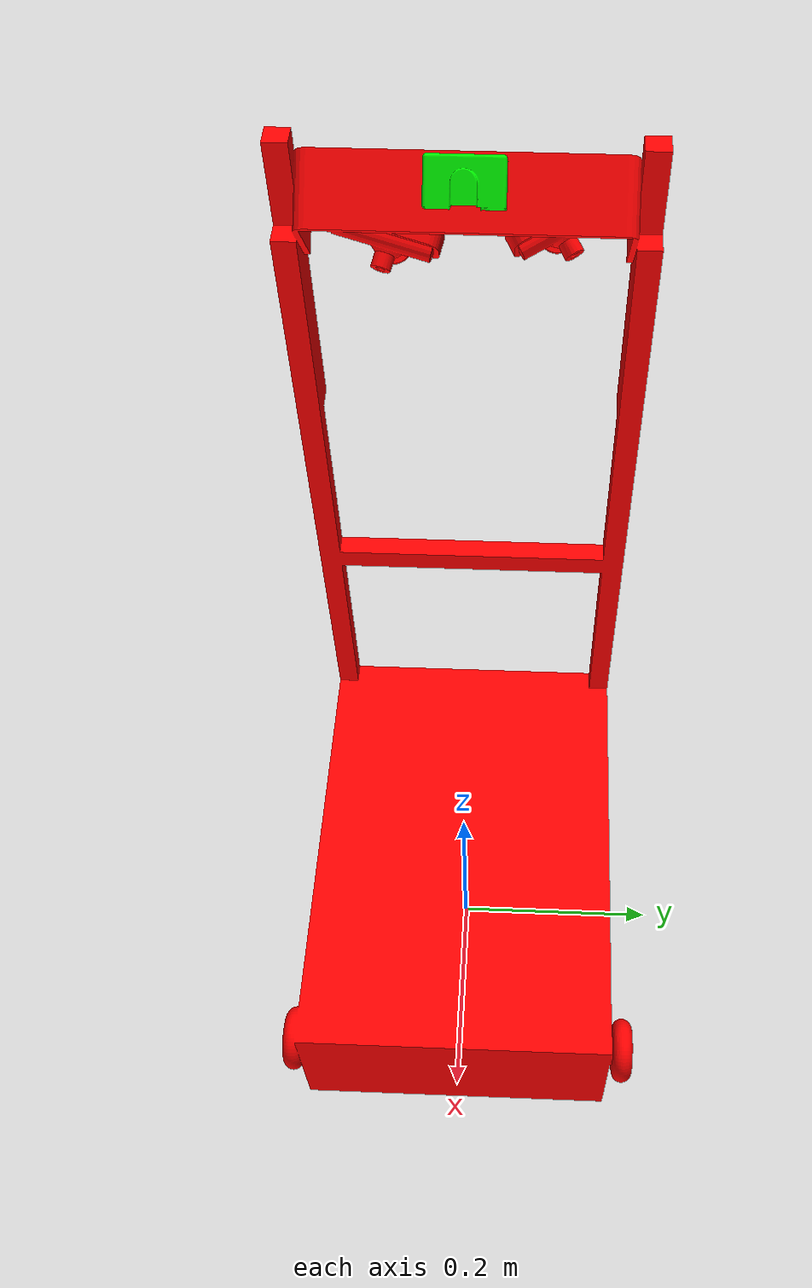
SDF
<?xml version="1.0" encoding="utf-8"?>
<sdf version="1.6">
  <model name="conde">
    <pose>0 0 0.0900000000000005 0 0 0</pose>
    <plugin name="clock" filename="libgz_clock.so">
      <topic>/gazebo/frc/time</topic>
    </plugin>
    <link name="chassis">
      <gravity>1</gravity>
      <self_collide>0</self_collide>
      <pose>-0.0708311922786808 0 0.126939925664659 0 0 0</pose>
      <must_be_base_link>1</must_be_base_link>
      <velocity_decay>
        <linear>0</linear>
        <angular>0</angular>
      </velocity_decay>
      <inertial>
        <mass>10.5639601562742</mass>
        <pose>0.0718791678031616 0 -0.0762798513784499 0 0 0</pose>
        <inertia>
          <ixx>0.07782818</ixx>
          <ixy>0</ixy>
          <ixz>0.02385301</ixz>
          <iyy>0.15005209</iyy>
          <iyz>0</iyz>
          <izz>0.17500393</izz>
        </inertia>
      </inertial>
      <collision name="chassis_collision">
        <pose>0.0708311922786808 -1.42589257214707E-05 -0.126939925664659 0 0 0</pose>
        <geometry>
          <mesh>
            <scale>1 1 1</scale>
            <uri>model://meshes/chassis_col.STL</uri>
          </mesh>
        </geometry>
        <surface>
          <contact>
            <ode>
              <kp>50000</kp>
              <kd>9000</kd>
            </ode>
          </contact>
          <friction>
            <ode>
              <mu>0</mu>
              <mu2>0</mu2>
            </ode>
          </friction>
        </surface>
      </collision>
      <visual name="chassis_visual">
        <pose>0.0708311922786808 0 -0.126939925664659 0 0 0</pose>
        <material>
          <ambient>1 0 0 1</ambient>
          <diffuse>1 0 0 1</diffuse>
        </material>
        <geometry>
          <mesh>
            <scale>1 1 1</scale>
            <uri>model://meshes/chassis.STL</uri>
          </mesh>
        </geometry>
      </visual>

      <visual name="camera_wheel">
        <pose>-0.12 -0.0 0.562431407758936 -0.7 0 1.57</pose>
        <material>
          <ambient>0 1 0 1</ambient>
          <diffuse>0 1 0 1</diffuse>
        </material>
        <geometry>
          <mesh>
            <scale>0.0007 0.0007 0.0007</scale>
            <uri>model://meshes/Playstation_Eye_Cover_1mm.STL</uri>
          </mesh>
        </geometry>
      </visual>

	<sensor name="conde_camera_controller_tracking_left" type="camera">
	  <visualize>0</visualize>
	  <always_on>1</always_on>
	  <pose>-0.1242802892 0.09985 0.48372014861 0.319455 0.531892 0.56147</pose>
	  <camera name="conde_camera_tracking_left">
		<horizontal_fov>1.0865</horizontal_fov>
		<image>
		  <width>160</width>
		  <height>120</height>
		</image>
		<clip>
		  <near>0.001</near>
		  <far>50</far>
		</clip>
	  </camera>
	  <plugin name="conde_camera_controller_tracking_left" filename="libgazebo_ros_camera.so">
		<alwaysOn>true</alwaysOn>
		<updateRate>30.0</updateRate>
		<cameraName>conde_camera_tracking_left/</cameraName>
		<imageTopicName>image_raw</imageTopicName>
		<cameraInfoTopicName>camera_info_left</cameraInfoTopicName>
		<frameName>camera_link_tracking</frameName>

		<k1>-0.245678598507515</k1>
		<k2>0.050106260288961</k2>
		<k3>0.0</k3>
		<p1>0.004883645512607</p1>
		<p2>0.001092737340199</p2>
	  </plugin>
	</sensor>
	<sensor name="camera_controller_top" type="camera">
	  <visualize>0</visualize>
	  <always_on>1</always_on>
	  <pose>-0.079244135856401 0 0.562431407758936 0 -0.28 0</pose>
	  <camera name="chassiscameratop">
		<horizontal_fov>1.5707963267949</horizontal_fov>
		<image>
		  <width>320</width>
		  <height>240</height>
		</image>
		<clip>
		  <near>0.01</near>
		  <far>1000</far>
		</clip>
	  </camera>
	  <plugin name="camera_controller_tracking_top" filename="libgazebo_ros_camera.so">
		<alwaysOn>true</alwaysOn>
		<updateRate>30.0</updateRate>
		<cameraName>conde_camera_signalling_panel/</cameraName>
		<imageTopicName>image_raw</imageTopicName>
		<cameraInfoTopicName>camera_info_top</cameraInfoTopicName>

		<k1>-0.275678598507515</k1>
		<k2>0.045106260288961</k2>
		<k3>0.0</k3>
		<p1>0.004883645512607</p1>
		<p2>0.001092737340199</p2>
	   </plugin>
	</sensor>
	<sensor name="conde_camera_tracking_right" type="camera">
	  <visualize>0</visualize>
	  <always_on>1</always_on>
	  <pose>-0.12403780772 -0.1015 0.48372007433  -0.239603 0.564592 -0.4785536732</pose>
	  <camera name="conde_camera_tracking_right">
		 <horizontal_fov>1.0965</horizontal_fov>
		<image>
		  <width>160</width>
		  <height>120</height>
		</image>
		<clip>
		  <near>0.001</near>
		  <far>50</far>
		</clip>
	  </camera>
	  <plugin name="camera_controller_tracking_right" filename="libgazebo_ros_camera.so">
		<alwaysOn>true</alwaysOn>
		<updateRate>30.0</updateRate>
		<cameraName>conde_camera_tracking_right/</cameraName>
		<imageTopicName>image_raw</imageTopicName>
		<cameraInfoTopicName>camera_right_info</cameraInfoTopicName>
		<frameName>camera_link_tracking</frameName>

		<distortion>

		    <k1>-0.245678598507515</k1>
		    <k2>0.050106260288961</k2>
		    <k3>0.0</k3>
		    <p1>0.005283645512607</p1>
		    <p2>0.002092737340199</p2>
		  </distortion>
	  </plugin>
	</sensor>

    </link>

    <link name="left_wheel">
      <gravity>1</gravity>
      <self_collide>0</self_collide>
      <pose>-0.0708311922786808 0 0.126939925664659 0 0 0</pose>
      <must_be_base_link>0</must_be_base_link>
      <velocity_decay>
        <linear>0</linear>
        <angular>0</angular>
      </velocity_decay>
      <inertial>
        <mass>0.0632096191935568</mass>
        <pose>0.240837625383886 0.168345393007281 -0.18493215546236 0 0 0</pose>
        <inertia>
          <ixx>0.00001638</ixx>
          <ixy>0</ixy>
          <ixz>0</ixz>
          <iyy>0.00002654</iyy>
          <iyz>0</iyz>
          <izz>0.00001638</izz>
        </inertia>
      </inertial>
      <collision name="left_wheel_collision">
        <pose>0.0708311922786808 0 -0.126939925664659 0 0 0</pose>
        <geometry>
          <mesh>
            <scale>1 1 1</scale>
            <uri>model://meshes/left_wheel_col.STL</uri>
          </mesh>
        </geometry>
        <surface>
          <contact>
            <ode>
              <kp>10000</kp>
              <kd>1000</kd>
            </ode>
          </contact>
          <friction>
            <ode>
              <mu>20000</mu>
              <mu2>5000</mu2>
            </ode>
          </friction>
        </surface>
      </collision>
      <visual name="left_wheel_visual">
        <pose>0.0708311922786808 0 -0.126939925664659 0 0 0</pose>
        <material>
          <ambient>1 0 0 1</ambient>
          <diffuse>1 0 0 1</diffuse>
        </material>
        <geometry>
          <mesh>
            <scale>1 1 1</scale>
            <uri>model://meshes/left_wheel.STL</uri>
          </mesh>
        </geometry>
      </visual>
    </link>

    <joint name="chassis-left_wheel" type="revolute">
      <parent>chassis</parent>
      <child>left_wheel</child>
      <pose>0.240831192278681 -0.170014258925721 -0.184999925664659 0 0 0</pose>
      <axis>
        <xyz>0 1 0</xyz>
        <dynamics>
          <damping>0</damping>
          <friction>0</friction>
        </dynamics>
        <limit>
          <effort>10</effort>
        </limit>
      </axis>
    </joint>

    <link name="right_wheel">
      <gravity>1</gravity>
      <self_collide>0</self_collide>
      <pose>-0.0708311922786808 0.0 0.126939925664659 0 0 0</pose>
      <must_be_base_link>0</must_be_base_link>
      <velocity_decay>
        <linear>0</linear>
        <angular>0</angular>
      </velocity_decay>
      <inertial>
        <mass>0.0632096191935568</mass>
        <pose>0.240837625383886 -0.168345393007281 -0.18493215546236 0 0 0</pose>
        <inertia>
          <ixx>0.00001638</ixx>
          <ixy>0</ixy>
          <ixz>0</ixz>
          <iyy>0.00002654</iyy>
          <iyz>0</iyz>
          <izz>0.00001638</izz>
        </inertia>
      </inertial>
      <collision name="right_wheel_collision">
        <pose>0.0708311922786808 0 -0.126939925664659 0 0 0</pose>
        <geometry>
          <mesh>
            <scale>1 1 1</scale>
            <uri>model://meshes/right_wheel_col.STL</uri>
          </mesh>
        </geometry>
        <surface>
          <contact>
            <ode>
              <kp>10000</kp>
              <kd>1000</kd>
            </ode>
          </contact>
          <friction>
            <ode>
              <mu>20000</mu>
              <mu2>5000</mu2>
            </ode>
          </friction>
        </surface>
      </collision>
      <visual name="right_wheel_visual">
        <pose>0.0708311922786808 0 -0.126939925664659 0 0 0</pose>
        <material>
          <ambient>1 0 0 1</ambient>
          <diffuse>1 0 0 1</diffuse>
        </material>
        <geometry>
          <mesh>
            <scale>1 1 1</scale>
            <uri>model://meshes/right_wheel.STL</uri>
          </mesh>
        </geometry>
      </visual>
    </link>
    <joint name="chassis-right_wheel" type="revolute">
      <parent>chassis</parent>
      <child>right_wheel</child>
      <pose>0.240831192278681 0.170014258925721 -0.184939925664659 0 0 0</pose>
      <axis>
        <xyz>0 1 0</xyz>
        <dynamics>
          <damping>0</damping>
          <friction>0</friction>
        </dynamics>
        <limit>
          <effort>10</effort>
        </limit>
      </axis>
    </joint>

	<plugin name='differential_drive_controller' filename='libgazebo_ros_diff_drive.so'>
		<publishWheelTF>true</publishWheelTF>
		<publishWheelJointState>false</publishWheelJointState>
		<alwaysOn>true</alwaysOn>
		<updateRate>50</updateRate>
		<rightJoint>chassis-right_wheel</rightJoint>
		<leftJoint>chassis-left_wheel</leftJoint>
		<wheelSeparation>0.3708</wheelSeparation>
		<wheelDiameter>0.051522</wheelDiameter>
		<wheelTorque>7.5</wheelTorque>
		<commandTopic>cmd_vel</commandTopic>
		<odometryTopic>odom</odometryTopic>
		<odometryFrame>odom</odometryFrame>
		<robotBaseFrame>base_footprint</robotBaseFrame>
		<robotNamespace>/</robotNamespace>
		<legacyMode>false</legacyMode>
  	<rosDebugLevel>na</rosDebugLevel>
		<wheelAcceleration>0</wheelAcceleration>
		<publishTf>0</publishTf>
	</plugin>
  </model>
</sdf>
